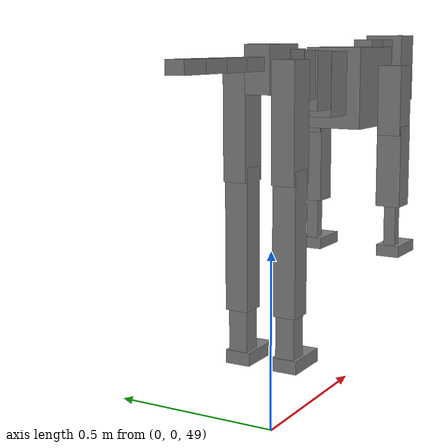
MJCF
<mujoco model="dog">

    <default>
        <joint armature="0.02" stiffness="1" damping="0.2" limited="true"/>
        <geom condim="3" friction="1 0.05 0.05" margin="0.01"/>
        <motor ctrllimited="true" ctrlrange="-1.0 1.0" forcelimited="true" gear="50"/>
    </default>

    <compiler inertiafromgeom="true" angle="radian"/>

    <option timestep="0.016" iterations="50" tolerance="1e-10" solver="Newton" jacobian="dense" cone="pyramidal"/>

    <size nconmax="20000" njmax="60000" nstack="5000000"/>
    <visual>
        <map force="0.1" zfar="30"/>
        <rgba haze="0.15 0.25 0.35 1"/>
        <quality shadowsize="2048"/>
        <global offwidth="800" offheight="800"/>
    </visual>

    <asset>
        <texture type="skybox" builtin="gradient" rgb1="0.3 0.5 0.7" rgb2="0 0 0" width="512" height="512"/>
        <texture name="texplane" type="2d" builtin="checker" rgb1=".2 .3 .4" rgb2=".1 0.15 0.2" width="512" height="512"
                 mark="cross" markrgb=".8 .8 .8"/>
        <texture name="texgeom" type="cube" builtin="flat" mark="cross" width="127" height="1278" rgb1="0.8 0.6 0.4"
                 rgb2="0.8 0.6 0.4" markrgb="1 1 1" random="0.01"/>

        <material name="matplane" reflectance="0.3" texture="texplane" texrepeat="1 1" texuniform="true"/>
        <material name="matgeom" texture="texgeom" texuniform="true" rgba="0.8 0.6 .4 1"/>
    </asset>

    <worldbody>
        <geom name="floor" pos="0 0 0" size="0 0 .25" type="plane" material="matplane" condim="3"/>

        <light directional="false" diffuse=".2 .2 .2" specular="0 0 0" pos="0 0 5" dir="0 0 -1" castshadow="false"/>
        <light mode="targetbodycom" target="torso" directional="false" diffuse=".8 .8 .8" specular="0.3 0.3 0.3"
               pos="0 0 4.0" dir="0 0 -1"/>

        <body name="root" pos="0 0 50">
            <freejoint name="root_1"/>
            <geom type="box" pos="0 0 -0.02" size="0.0774  0.0358  0.063" density="2030"/>

            <body name="spine1" pos="0.054 0 0">
                <joint name="spine1_y" axis="0 1 0" range="0 0.7" limited="true"/>
                <geom type="box" pos="0.02375 0 -0.03" size="0.04375  0.0375  0.05985" density="2030"/>

                <body name="spine2" pos="0.0612 0 0">
                    <joint name="spine2_y" axis="0 1 0" range="-0.15 0.15" limited="true"/>
                    <geom type="box" pos="0.03555  0  -0.04" size="0.04055  0.039  0.06615" density="2030"/>

                    <body name="spine3" pos="0.0730 0 0">
                        <joint name="spine3_y" axis="0 1 0" range="-0.15 0.15" limited="true"/>
                        <geom type="box" pos="0.03555  0  -0.057" size="0.04555  0.0445  0.081" density="2030"/>

                        <body name="spine4" pos="0.0780 0 0">
                            <joint name="spine4_y" axis="0 1 0" range="-0.15 0.15" limited="true"/>
                            <geom type="box" pos="0.05265  0  -0.07" size="0.05265  0.045  0.09135" density="2030"/>

                            <body name="torso" pos="0.1082 0 0">
                                <joint name="torso_y" axis="0 1 0" range="-0.15 0.15" limited="true"/>
                                <geom type="box" pos="0.11925  0  -0.085" size="0.11925  0.085  0.11745"
                                      density="2030"/>

                                <body name="neck1" pos="0.2160  0   0.0180">
                                    <joint name="neck1_y" axis="0 1 0" range="-1.2  -1" limited="true"/>
                                    <geom type="box" pos="0.0423  0  0" size="0.0423  0.03  0.036" density="2325"/>

                                    <body name="neck2" pos="0.0853  0  0">
                                        <joint name="neck2_y" axis="0 1 0" range="0.1  0" limited="true"/>
                                        <geom type="box" pos="0.0423  0  0" size="0.0423  0.03  0.036" density="2325"/>

                                        <body name="head" pos="0.0853  0  0">
                                            <joint name="head_y" axis="0 1 0" range="-0.3  -0.2" limited="true"/>
                                            <geom type="box" pos="0.0531  0  -0.055" size="0.0531  0.06  0.1044"
                                                  density="4030"/>

                                        </body>
                                    </body>
                                </body>

                                <body name="front_shoulder" pos="0.156  0   -0.0480">
                                    <joint name="front_shoulder_y" axis="0 1 0" range="-1 1.5" limited="true"/>
                                    <geom type="box" pos="0 0.13 -0.0761" size="0.0412  0.0352  0.1027" density="1158"/>
                                    <geom type="box" pos="0 -0.13 -0.0761" size="0.0412  0.0352  0.1027"
                                          density="1158"/>

                                    <body name="front_elbow" pos="0  0  -0.1521">
                                        <joint name="front_elbow_y" axis="0 1 0" range="-2 0" limited="true"/>
                                        <geom type="box" pos="0 0.13 -0.1208" size="0.0368  0.0376  0.1208"
                                              density="1081"/>
                                        <geom type="box" pos="0 -0.13 -0.1208" size="0.0368  0.0376  0.1208"
                                              density="1081"/>

                                        <body name="front_wrist" pos="0  0  -0.2416">
                                            <joint name="front_wrist_y" axis="0 1 0" range="-0.2 0" limited="true"/>
                                            <geom type="box" pos="0 0.13 -0.0679" size="0.0162  0.0180  0.0811"
                                                  density="1664"/>
                                            <geom type="box" pos="0 -0.13 -0.0679" size="0.0162  0.0180  0.0811"
                                                  density="1664"/>

                                            <body name="front_finger_end" pos="0  0  -0.1358">
                                                <joint name="front_finger_y" axis="0 1 0" range="-0.4 1"
                                                       limited="true"/>
                                                <geom type="box" pos="0.0356  0.13  -0.0023"
                                                      size="0.0652  0.0356  0.0173" density="1515"/>
                                                <geom type="box" pos="0.0356  -0.13  -0.0023"
                                                      size="0.0652  0.0356  0.0173" density="1515"/>

                                            </body>

                                        </body>
                                    </body>
                                </body>

                            </body>
                        </body>
                    </body>
                </body>
            </body>

            <body name="back_hip" pos="-0.03 0 -0.018">
                <joint name="back_hip_y" axis="0 1 0" range="-1.5 0.3" limited="true"/>
                <geom type="box" pos="0 0.07 -0.1347" size="0.0416  0.0326  0.1575" density="1154"/>
                <geom type="box" pos="0 -0.07 -0.1347" size="0.0416  0.0326  0.1575" density="1154"/>

                <body name="back_knee" pos="0  0  -0.2695">
                    <joint name="back_knee_y" axis="0 1 0" range="0 2.8" limited="true"/>
                    <geom type="box" pos="0 0.07 -0.1762" size="0.0332  0.0327  0.1918" density="1227"/>
                    <geom type="box" pos="0 -0.07 -0.1762" size="0.0332  0.0327  0.1918" density="1227"/>

                    <body name="back_ankle" pos="0  0  -0.3525">
                        <joint name="back_ankle_y" axis="0 1 0" range="-2.2 0" limited="true"/>
                        <geom type="box" pos="0 0.07 -0.0717" size="0.0266  0.0266  0.0829" density="1284"/>
                        <geom type="box" pos="0 -0.07 -0.0717" size="0.0266  0.0266  0.0829" density="1284"/>

                        <body name="back_toe_end" pos="0  0  -0.1433">
                            <joint name="back_toe_y" axis="0 1 0" range="-0.4 1" limited="true"/>
                            <geom type="box" pos="0.0353  0.07  -0.0034" size="0.0648  0.0353  0.0184" density="1515"/>
                            <geom type="box" pos="0.0353  -0.07  -0.0034" size="0.0648  0.0353  0.0184" density="1515"/>

                        </body>
                    </body>
                </body>
            </body>

            <body name="tail1" pos="-0.074 0 -0.006">
                <joint name="tail1_y" axis="0 1 0" range="-0.2 0.2" limited="true"/>
                <geom type="box" pos="-0.0536  0  0" size="0.045  0.025  0.0175" density="1587"/>

                <body name="tail2" pos="-0.09 0 0">
                    <joint name="tail2_y" axis="0 1 0" range="-0.2 0.2" limited="true"/>
                    <geom type="box" pos="-0.0536  0  0" size="0.045  0.025  0.0175" density="1587"/>

                    <body name="tail3" pos="-0.09 0 0">
                        <joint name="tail3_y" axis="0 1 0" range="-0.2 0.2" limited="true"/>
                        <geom type="box" pos="-0.0536  0  0" size="0.045  0.025  0.0175" density="1587"/>

                        <body name="tail4" pos="-0.09 0 0">
                            <joint name="tail4_y" axis="0 1 0" range="-0.2 0.2" limited="true"/>
                            <geom type="box" pos="-0.0536  0  0" size="0.045  0.025  0.0175" density="1587"/>

                        </body>
                    </body>
                </body>
            </body>
        </body>
    </worldbody>

    <actuator>
        <motor joint="spine1_y" forcerange="-150 150     "/>
        <motor joint="spine2_y" forcerange="-150 150     "/>
        <motor joint="spine3_y" forcerange="-150 150     "/>
        <motor joint="spine4_y" forcerange="-150 150     "/>
        <motor joint="torso_y" forcerange="-150 150     "/>
        <motor joint="neck1_y" forcerange="-100 100       "/>
        <motor joint="neck2_y" forcerange="-100 100       "/>
        <motor joint="head_y" forcerange="-150 150       "/>
        <motor joint="front_shoulder_y" forcerange="-184.55 150.02"/>
        <motor joint="front_elbow_y" forcerange="-192.88 180.56"/>
        <motor joint="front_wrist_y" forcerange="-74.33 69.78"/>
        <motor joint="front_finger_y" forcerange="-91.21 58.57"/>
        <motor joint="back_hip_y" forcerange="-376.98 258.13"/>
        <motor joint="back_knee_y" forcerange="-276.98 398.93"/>
        <motor joint="back_angle_y" forcerange="-140.70 184.14"/>
        <motor joint="back_toe_y" forcerange="-131.81 70.96"/>
        <motor joint="tail1_y" forcerange="-50 50     "/>
        <motor joint="tail2_y" forcerange="-50 50     "/>
        <motor joint="tail3_y" forcerange="-50 50     "/>
        <motor joint="tail4_y" forcerange="-50 50     "/>
    </actuator>
</mujoco>
